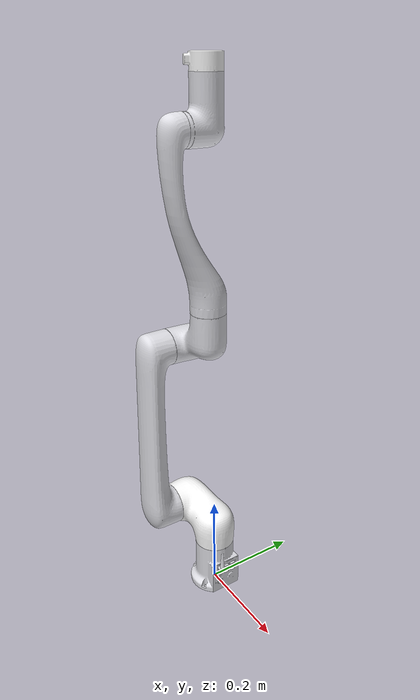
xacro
<?xml version="1.0"?>
<robot xmlns:xacro="http://www.ros.org/wiki/xacro" name="rml_63_description">
    <xacro:arg name="initial_positions_file" default="initial_positions.yaml" />

    <!-- Import rml_63_description urdf file -->
    <!-- arg->property -->
    <xacro:property name="link6_type" value="$(arg link6_type)" />
    <xacro:property name="base_type" value="$(arg base_type)" />
    <xacro:include filename="$(find rm_description)/urdf/rml_63.urdf.xacro" >
        link6_type:=$(arg link6_type)
        base_type:=$(arg base_type)
    </xacro:include>

    <!-- Import control_xacro -->
    <xacro:include filename="rml_63_description.ros2_control.xacro" />

    <xacro:rml_63_description_ros2_control name="FakeSystem" initial_positions_file="$(arg initial_positions_file)"/>

</robot>

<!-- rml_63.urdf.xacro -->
<robot  name="rml_63_description" xmlns:xacro="http://www.ros.org/wiki/xacro">
    <!-- link6_type -->
    <xacro:arg name="link6_type" default="Link6" />
    <xacro:arg name="base_type" default="base_link" />
    <!-- arg->property -->
    <xacro:property name="link6_type" value="$(arg link6_type)" />
    <xacro:property name="base_type" value="$(arg base_type)" />
    <!-- RML63II and RML63III use different link geometry. Keep each URDF
         coordinate system paired with the meshes exported for that model. -->
    <xacro:property name="mesh_dir" value="${'rm_63_III_arm' if base_type == 'base_link_III' else 'rm_63_arm'}" />
    <xacro:if value="${ base_type =='base_link' }">
    <link
    name="base_link">
    <inertial>
      <origin
        xyz="0.0014213 -0.00010164 0.050087"
        rpy="0 0 0" />
      <mass
        value="1.862" />
      <inertia
        ixx="0.00099641"
        ixy="-3.2815E-06"
        ixz="1.0053E-05"
        iyy="0.0010164"
        iyz="-1.2859E-06"
        izz="0.00067934" />
    </inertial>
    <visual>
      <origin
        xyz="0 0 0"
        rpy="0 0 0" />
      <geometry>
        <mesh
          filename="package://rm_description/meshes/${mesh_dir}/base_link.STL" />
      </geometry>
      <material
        name="">
        <color
          rgba="0.86667 0.86667 0.8902 1" />
      </material>
    </visual>
    <collision>
      <origin
        xyz="0 0 0"
        rpy="0 0 0" />
      <geometry>
        <mesh
          filename="package://rm_description/meshes/${mesh_dir}/base_link.STL" />
      </geometry>
    </collision>
  </link>
  <link
    name="link1">
    <inertial>
      <origin
        xyz="-0.068442 -0.023913 -0.006938"
        rpy="0 0 0" />
      <mass
        value="1.837" />
      <inertia
        ixx="0.002323337"
        ixy="-0.000758998"
        ixz="0.000825985"
        iyy="0.003950377"
        iyz="0.000254693"
        izz="0.003921999" />
    </inertial>
    <visual>
      <origin
        xyz="0 0 0"
        rpy="0 0 0" />
      <geometry>
        <mesh
          filename="package://rm_description/meshes/${mesh_dir}/link1.STL" />
      </geometry>
      <material
        name="">
        <color
          rgba="1 1 1 1" />
      </material>
    </visual>
    <collision>
      <origin
        xyz="0 0 0"
        rpy="0 0 0" />
      <geometry>
        <mesh
          filename="package://rm_description/meshes/${mesh_dir}/link1.STL" />
      </geometry>
    </collision>
  </link>
  <joint
    name="joint1"
    type="revolute">
    <origin
      xyz="0 0 0.172"
      rpy="0 0 0" />
    <parent
      link="base_link" />
    <child
      link="link1" />
    <axis
      xyz="0 0 1" />
    <limit
      lower="-3.106"
      upper="3.106"
      effort="60"
      velocity="3.14" />
  </joint>
  </xacro:if>
<xacro:if value="${ base_type =='base_link_III' }">
    <link
    name="base_link">
    <inertial>
      <origin
        xyz="0.00020481 -8.2366E-05 0.043092"
        rpy="0 0 0" />
      <mass
        value="1.1" />
      <inertia
        ixx="0.00082415"
        ixy="-2.9296E-06"
        ixz="2.8721E-05"
        iyy="0.00082056"
        iyz="-2.2126E-06"
        izz="0.00068567" />
    </inertial>
    <visual>
      <origin
        xyz="0 0 0"
        rpy="0 0 0" />
      <geometry>
        <mesh
          filename="package://rm_description/meshes/${mesh_dir}/base_link.STL" />
      </geometry>
      <material
        name="">
        <color
          rgba="0.792156862745098 0.819607843137255 0.933333333333333 1" />
      </material>
    </visual>
    <collision>
      <origin
        xyz="0 0 0"
        rpy="0 0 0" />
      <geometry>
        <mesh
          filename="package://rm_description/meshes/${mesh_dir}/base_link.STL" />
      </geometry>
    </collision>
  </link>
  <link
    name="link1">
    <inertial>
      <origin
        xyz="-0.0129 0.0001 -0.0298"
        rpy="0 0 0" />
      <mass
        value="1.5979" />
      <inertia
        ixx="0.0017312851"
        ixy="-0.0000201865"
        ixz="0.0006018106"
        iyy="0.0031817492"
        iyz="0.0000016777"
        izz="0.0025668855" />
    </inertial>
    <visual>
      <origin
        xyz="0 0 0"
        rpy="0 0 0" />
      <geometry>
        <mesh
          filename="package://rm_description/meshes/${mesh_dir}/link1.STL" />
      </geometry>
      <material
        name="">
        <color
          rgba="1 1 1 1" />
      </material>
    </visual>
    <collision>
      <origin
        xyz="0 0 0"
        rpy="0 0 0" />
      <geometry>
        <mesh
          filename="package://rm_description/meshes/${mesh_dir}/link1.STL" />
      </geometry>
    </collision>
  </link>
  <joint
    name="joint1"
    type="revolute">
    <origin
      xyz="0 0 0.1625"
      rpy="0 0 0" />
    <parent
      link="base_link" />
    <child
      link="link1" />
    <axis
      xyz="0 0 1" />
    <limit
      lower="-3.106"
      upper="3.106"
      effort="60"
      velocity="3.14" />
  </joint>
  </xacro:if>
  <link
    name="link2">
    <inertial>
      <origin
        xyz="${'0.1098 0.0001 -0.0672' if base_type == 'base_link_III' else '0.1667 -0.000002 -0.09259'}"
        rpy="0 0 0" />
      <mass
        value="${'2.9903' if base_type == 'base_link_III' else '2.006'}" />
      <inertia
        ixx="${'0.0032215462' if base_type == 'base_link_III' else '0.001465511'}"
        ixy="${'0.0000006897' if base_type == 'base_link_III' else '-0.000001176'}"
        ixz="${'0.0040170668' if base_type == 'base_link_III' else '-0.000161533'}"
        iyy="${'0.0532159255' if base_type == 'base_link_III' else '0.030618537'}"
        iyz="${'0.0000012973' if base_type == 'base_link_III' else '0.00000004'}"
        izz="${'0.0524195464' if base_type == 'base_link_III' else '0.030971934'}" />
    </inertial>
    <visual>
      <origin
        xyz="0 0 0"
        rpy="0 0 0" />
      <geometry>
        <mesh
          filename="package://rm_description/meshes/${mesh_dir}/link2.STL" />
      </geometry>
      <material
        name="">
        <color
          rgba="0.86667 0.86667 0.8902 1" />
      </material>
    </visual>
    <collision>
      <origin
        xyz="0 0 0"
        rpy="0 0 0" />
      <geometry>
        <mesh
          filename="package://rm_description/meshes/${mesh_dir}/link2.STL" />
      </geometry>
    </collision>
  </link>
  <joint
    name="joint2"
    type="revolute">
    <origin
      xyz="-0.086 0 0"
      rpy="${'1.5708 -1.5708 3.1416' if base_type == 'base_link_III' else '1.5708 -1.5708 3.14'}" />
    <parent
      link="link1" />
    <child
      link="link2" />
    <axis
      xyz="0 0 1" />
    <limit
      lower="-3.106"
      upper="3.106"
      effort="60"
      velocity="3.14" />
  </joint>
  <link
    name="link3">
    <inertial>
      <origin
        xyz="${'0.0144 -0.0056 -0.0294' if base_type == 'base_link_III' else '0.033399 -0.029498 -0.017697'}"
        rpy="0 0 0" />
      <mass
        value="${'1.357' if base_type == 'base_link_III' else '1.961'}" />
      <inertia
        ixx="${'0.0019004631' if base_type == 'base_link_III' else '0.004112772'}"
        ixy="${'0.0003993072' if base_type == 'base_link_III' else '0.001938241'}"
        ixz="${'-0.0005755251' if base_type == 'base_link_III' else '-0.001141244'}"
        iyy="${'0.0026290758' if base_type == 'base_link_III' else '0.0042931'}"
        iyz="${'0.0002275281' if base_type == 'base_link_III' else '0.001002886'}"
        izz="${'0.0021313348' if base_type == 'base_link_III' else '0.005363959'}" />
    </inertial>
    <visual>
      <origin
        xyz="0 0 0"
        rpy="0 0 0" />
      <geometry>
        <mesh
          filename="package://rm_description/meshes/${mesh_dir}/link3.STL" />
      </geometry>
      <material
        name="">
        <color
          rgba="0.86667 0.86667 0.8902 1" />
      </material>
    </visual>
    <collision>
      <origin
        xyz="0 0 0"
        rpy="0 0 0" />
      <geometry>
        <mesh
          filename="package://rm_description/meshes/${mesh_dir}/link3.STL" />
      </geometry>
    </collision>
  </link>
  <joint
    name="joint3"
    type="revolute">
    <origin
      xyz="0.38 0 0"
      rpy="0 0 1.5708" />
    <parent
      link="link2" />
    <child
      link="link3" />
    <axis
      xyz="0 0 1" />
    <limit
      lower="-3.106"
      upper="2.5307"
      effort="30"
      velocity="3.14" />
  </joint>
  <link
    name="link4">
    <inertial>
      <origin
        xyz="${'-0.0001 -0.023 0.2362' if base_type == 'base_link_III' else '0 -0.035177 -0.1844'}"
        rpy="0 0 0" />
      <mass
        value="${'1.8636' if base_type == 'base_link_III' else '1.201'}" />
      <inertia
        ixx="${'0.0233659749' if base_type == 'base_link_III' else '0.010697086'}"
        ixy="${'-0.0000002808' if base_type == 'base_link_III' else '-0.000000036'}"
        ixz="${'-0.000011416' if base_type == 'base_link_III' else '0.000000111'}"
        iyy="${'0.0219583225' if base_type == 'base_link_III' else '0.009929454'}"
        iyz="${'0.0054859936' if base_type == 'base_link_III' else '0.002698114'}"
        izz="${'0.0026979008' if base_type == 'base_link_III' else '0.001388994'}" />
    </inertial>
    <visual>
      <origin
        xyz="0 0 0"
        rpy="0 0 0" />
      <geometry>
        <mesh
          filename="package://rm_description/meshes/${mesh_dir}/link4.STL" />
      </geometry>
      <material
        name="">
        <color
          rgba="0.86667 0.86667 0.8902 1" />
      </material>
    </visual>
    <collision>
      <origin
        xyz="0 0 0"
        rpy="0 0 0" />
      <geometry>
        <mesh
          filename="package://rm_description/meshes/${mesh_dir}/link4.STL" />
      </geometry>
    </collision>
  </link>
  <joint
    name="joint4"
    type="revolute">
    <origin
      xyz="0.069 -0.405 0"
      rpy="1.5708 0 0" />
    <parent
      link="link3" />
    <child
      link="link4" />
    <axis
      xyz="0 0 1" />
    <limit
      lower="-3.106"
      upper="3.106"
      effort="30"
      velocity="3.14" />
  </joint>
  <link
    name="link5">
    <inertial>
      <origin
        xyz="${'0.0001 0.0326 -0.0152' if base_type == 'base_link_III' else '-0.000031 0.030146 -0.012341'}"
        rpy="0 0 0" />
      <mass
        value="${'1.0227' if base_type == 'base_link_III' else '1.026'}" />
      <inertia
        ixx="${'0.0019750111' if base_type == 'base_link_III' else '0.001643891'}"
        ixy="${'0.0000021684' if base_type == 'base_link_III' else '-0.000003076'}"
        ixz="${'-0.0000014555' if base_type == 'base_link_III' else '0.000000764'}"
        iyy="${'0.0007714019' if base_type == 'base_link_III' else '0.000673543'}"
        iyz="${'-0.0005071366' if base_type == 'base_link_III' else '-0.000383963'}"
        izz="${'0.0016577729' if base_type == 'base_link_III' else '0.001451996'}" />
    </inertial>
    <visual>
      <origin
        xyz="0 0 0"
        rpy="0 0 0" />
      <geometry>
        <mesh
          filename="package://rm_description/meshes/${mesh_dir}/link5.STL" />
      </geometry>
      <material
        name="">
        <color
          rgba="0.86667 0.86667 0.8902 1" />
      </material>
    </visual>
    <collision>
      <origin
        xyz="0 0 0"
        rpy="0 0 0" />
      <geometry>
        <mesh
          filename="package://rm_description/meshes/${mesh_dir}/link5.STL" />
      </geometry>
    </collision>
  </link>
  <joint
    name="joint5"
    type="revolute">
    <origin
      xyz="0 0 0"
      rpy="1.5708 0 3.1416" />
    <parent
      link="link4" />
    <child
      link="link5" />
    <axis
      xyz="0 0 1" />
    <limit
      lower="-3.106"
      upper="3.106"
      effort="10"
      velocity="3.14" />
  </joint>
  <xacro:if value="${ link6_type =='Link6' }">
    <link
    name="link6">
    <inertial>
      <origin
        xyz="${'-0.0005 0 -0.0101' if base_type == 'base_link_III' else '-0.000481 0.000365 -0.010605'}"
        rpy="0 0 0" />
      <mass
        value="0.107" />
      <inertia
        ixx="${'0.0000427569' if base_type == 'base_link_III' else '0.000041460'}"
        ixy="${'-0.0000000681' if base_type == 'base_link_III' else '-0.000003111'}"
        ixz="${'-0.0000001774' if base_type == 'base_link_III' else '-0.000000113'}"
        iyy="${'0.0000353575' if base_type == 'base_link_III' else '0.000038008'}"
        iyz="${'0.0000000298' if base_type == 'base_link_III' else '0.000000097'}"
        izz="${'0.0000639583' if base_type == 'base_link_III' else '0.000064288'}" />
    </inertial>
    <visual>
      <origin
        xyz="0 0 0"
        rpy="0 0 0" />
      <geometry>
        <mesh
          filename="package://rm_description/meshes/${mesh_dir}/link6.STL" />
      </geometry>
      <material
        name="">
        <color
          rgba="1 1 1 1" />
      </material>
    </visual>
    <collision>
      <origin
        xyz="0 0 0"
        rpy="0 0 0" />
      <geometry>
        <mesh
          filename="package://rm_description/meshes/${mesh_dir}/link6.STL" />
      </geometry>
    </collision>
  </link>
  <joint
    name="joint6"
    type="revolute">
    <origin
      xyz="${'0 0.1151 0' if base_type == 'base_link_III' else '0 0.115 0'}"
      rpy="1.5708 0 3.1416" />
    <parent
      link="link5" />
    <child
      link="link6" />
    <axis
      xyz="0 0 1" />
    <limit
      lower="-6.28"
      upper="6.28"
      effort="10"
      velocity="3.14" />
  </joint>
    </xacro:if>
    <xacro:if value="${ link6_type =='Link6_6f' }">
      <link
    name="link6">
    <inertial>
      <origin
        xyz="${'-0.0005 0 -0.0101' if base_type == 'base_link_III' else '-0.000481 0.000365 -0.010605'}"
        rpy="0 0 0" />
      <mass
        value="0.248" />
      <inertia
        ixx="${'0.0000427569' if base_type == 'base_link_III' else '0.000041460'}"
        ixy="${'-0.0000000681' if base_type == 'base_link_III' else '-0.000003111'}"
        ixz="${'-0.0000001774' if base_type == 'base_link_III' else '-0.000000113'}"
        iyy="${'0.0000353575' if base_type == 'base_link_III' else '0.000038008'}"
        iyz="${'0.0000000298' if base_type == 'base_link_III' else '0.000000097'}"
        izz="${'0.0000639583' if base_type == 'base_link_III' else '0.000064288'}" />
    </inertial>
    <visual>
      <origin
        xyz="0 0 0"
        rpy="0 0 0" />
      <geometry>
        <mesh
          filename="package://rm_description/meshes/${mesh_dir}/link6_6f.STL" />
      </geometry>
      <material
        name="">
        <color
          rgba="1 1 1 1" />
      </material>
    </visual>
    <collision>
      <origin
        xyz="0 0 0"
        rpy="0 0 0" />
      <geometry>
        <mesh
          filename="package://rm_description/meshes/${mesh_dir}/link6_6f.STL" />
      </geometry>
    </collision>
  </link>
  <joint
    name="joint6"
    type="revolute">
    <origin
      xyz="0 0.1436 0"
      rpy="1.5708 0 3.1416" />
    <parent
      link="link5" />
    <child
      link="link6" />
    <axis
      xyz="0 0 1" />
    <limit
      lower="-6.28"
      upper="6.28"
      effort="10"
      velocity="3.14" />
  </joint>
    </xacro:if>
    <xacro:if value="${ link6_type =='Link6_6fb' }">
       <link
    name="link6">
    <inertial>
      <origin
        xyz="${'-0.0005 0 -0.0101' if base_type == 'base_link_III' else '-0.000481 0.000365 -0.010605'}"
        rpy="0 0 0" />
      <mass
        value="0.248" />
      <inertia
        ixx="${'0.0000427569' if base_type == 'base_link_III' else '0.000041460'}"
        ixy="${'-0.0000000681' if base_type == 'base_link_III' else '-0.000003111'}"
        ixz="${'-0.0000001774' if base_type == 'base_link_III' else '-0.000000113'}"
        iyy="${'0.0000353575' if base_type == 'base_link_III' else '0.000038008'}"
        iyz="${'0.0000000298' if base_type == 'base_link_III' else '0.000000097'}"
        izz="${'0.0000639583' if base_type == 'base_link_III' else '0.000064288'}" />
    </inertial>
    <visual>
      <origin
        xyz="0 0 0"
        rpy="0 0 0" />
      <geometry>
        <mesh
          filename="package://rm_description/meshes/${mesh_dir}/link6_6fb.STL" />
      </geometry>
      <material
        name="">
        <color
          rgba="0.86667 0.86667 0.8902 1" />
      </material>
    </visual>
    <collision>
      <origin
        xyz="0 0 0"
        rpy="0 0 0" />
      <geometry>
        <mesh
          filename="package://rm_description/meshes/${mesh_dir}/link6_6fb.STL" />
      </geometry>
    </collision>
  </link>
  <joint
    name="joint6"
    type="revolute">
    <origin
      xyz="0 0.1323 0"
      rpy="1.5708 0 3.1416" />
    <parent
      link="link5" />
    <child
      link="link6" />
    <axis
      xyz="0 0 1" />
    <limit
      lower="-6.28"
      upper="6.28"
      effort="10"
      velocity="3.14" />
  </joint>

    </xacro:if>
</robot>
